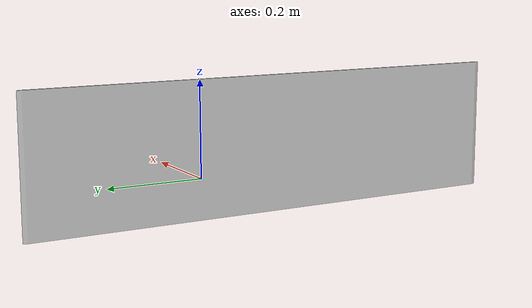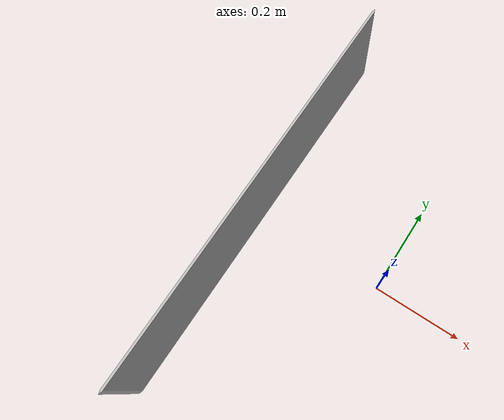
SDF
<?xml version="1.0" ?>
<sdf version="1.4">
  <model name="nist_maze_wall_120">
    <static>true</static>
    <link name="nist_maze_wall_120_link">
      <pose>0 0 0.0 0 0 1.5708</pose>
      <collision name="collision">
        <geometry>
          <mesh>
            <uri>model://nist_maze_wall_120/meshes/nist_maze_wall_120.dae</uri>
            <scale>0.75 0.5 0.2</scale>
          </mesh>
        </geometry>
      </collision>
      <visual name="visual">
        <geometry>
          <mesh>
            <uri>model://nist_maze_wall_120/meshes/nist_maze_wall_120.dae</uri>
            <scale>0.75 0.5 0.2</scale>
          </mesh>
        </geometry>
      </visual>
    </link>
  </model>
</sdf>
